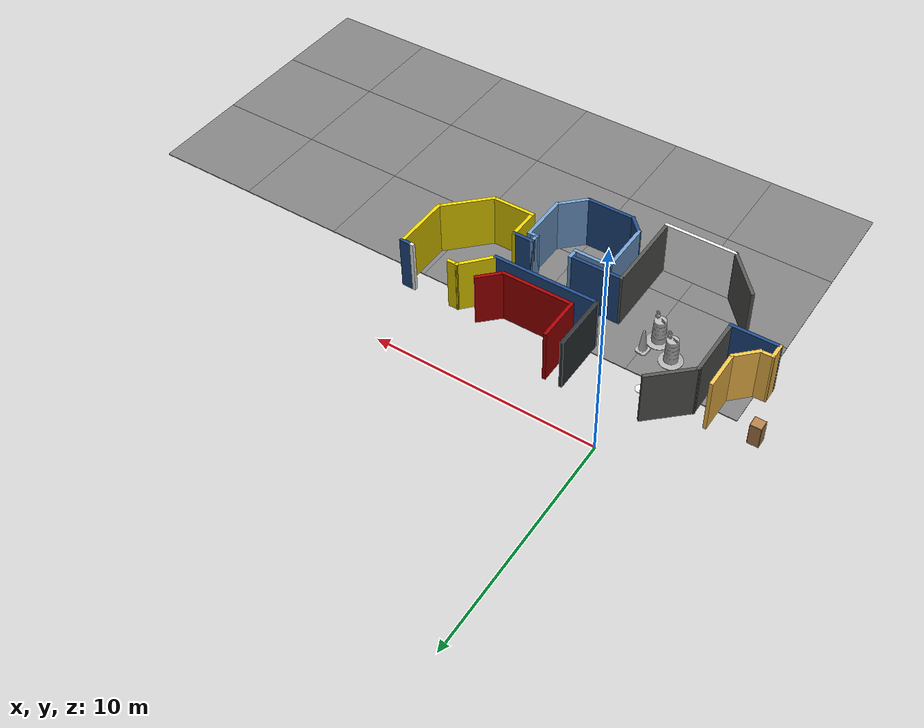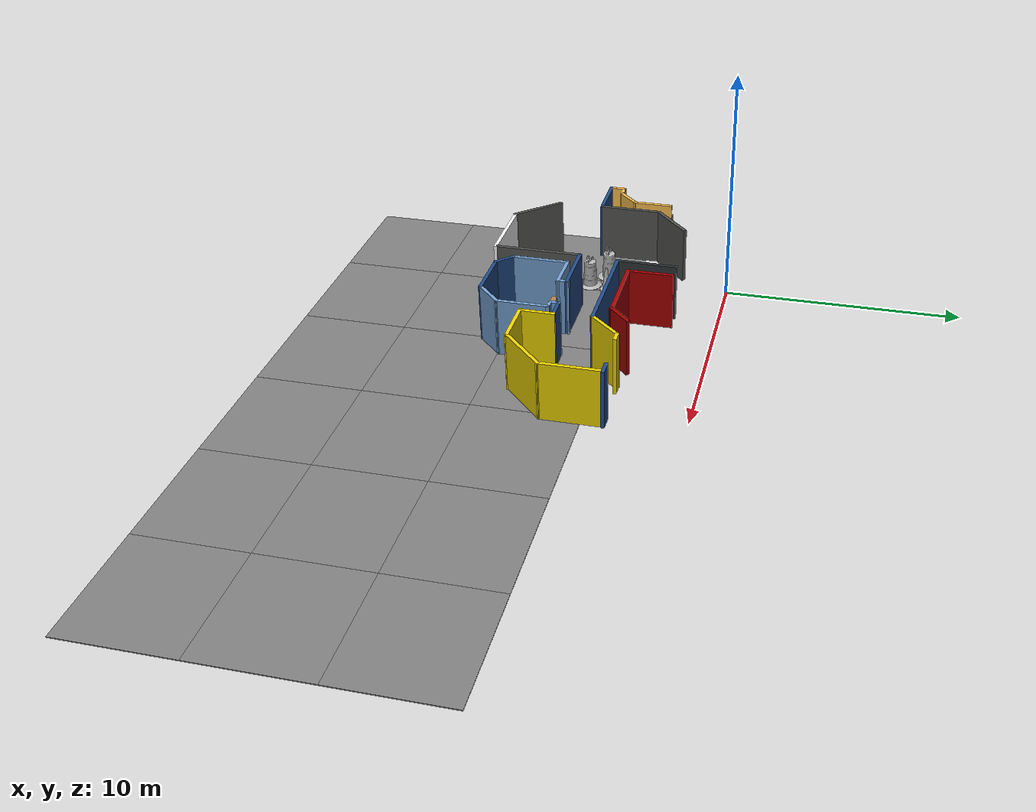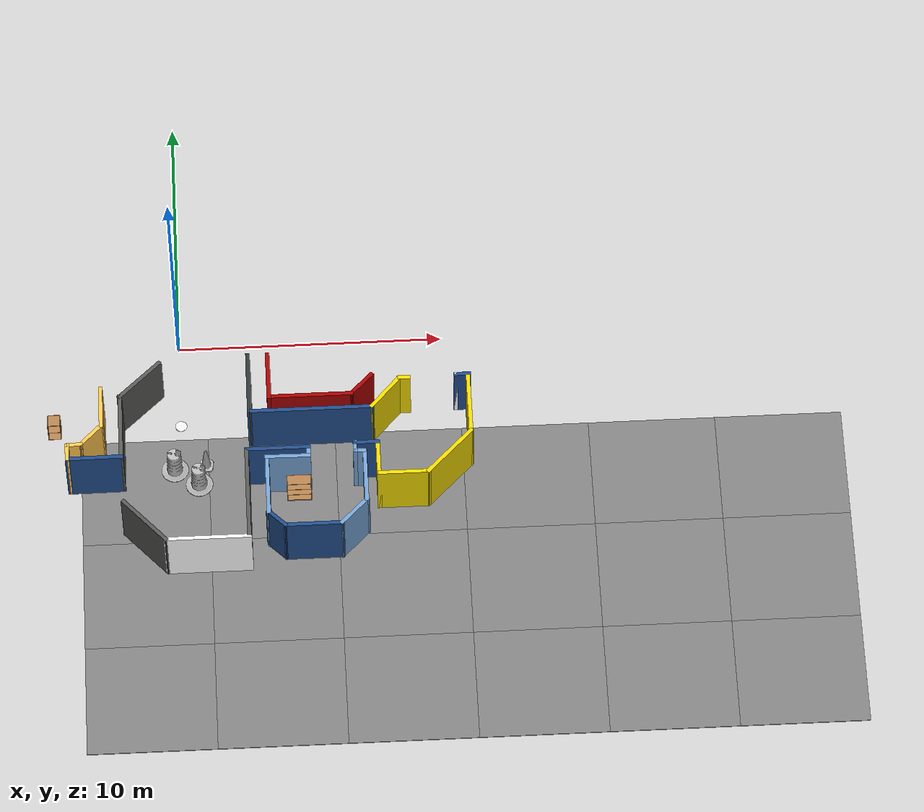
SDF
<sdf version="1.7">
 <world name="default">
  <model name="among_us_world">
   <pose>0.133216 -0.12311 0 0 -0 0</pose>
   <link name="Wall_136">
    <collision name="Wall_136_Collision">
     <geometry><box><size>0.5 0.15 2.5</size></box></geometry>
     <pose>0 0 1.25 0 -0 0</pose>
    </collision>
    <visual name="Wall_136_Visual">
     <pose>0 0 1.25 0 -0 0</pose>
     <geometry><box><size>0.5 0.15 2.5</size></box></geometry>
     <material>
      <ambient>0.929412 0.831373 0 1</ambient>
      <diffuse>0.929412 0.831373 0 1</diffuse>
      <specular>0.08 0.08 0.08 1</specular>
      <emissive>0 0 0 1</emissive>
      <pbr><metal><roughness>0.82</roughness><metalness>0</metalness></metal></pbr>
     </material>
     <meta><layer>0</layer></meta>
    </visual>
    <pose>8.3307 -3.01765 0 0 -0 3.14159</pose>
   </link>
   <link name="Wall_141">
    <collision name="Wall_141_Collision">
     <geometry><box><size>4.75 0.15 2.5</size></box></geometry>
     <pose>0 0 1.25 0 -0 0</pose>
    </collision>
    <visual name="Wall_141_Visual">
     <pose>0 0 1.25 0 -0 0</pose>
     <geometry><box><size>4.75 0.15 2.5</size></box></geometry>
     <material>
      <ambient>0.12549 0.290196 0.529412 1</ambient>
      <diffuse>0.12549 0.290196 0.529412 1</diffuse>
      <specular>0.08 0.08 0.08 1</specular>
      <emissive>0 0 0 1</emissive>
      <pbr><metal><roughness>0.82</roughness><metalness>0</metalness></metal></pbr>
     </material>
     <meta><layer>0</layer></meta>
    </visual>
    <pose>4.78856 -4.21327 0 0 -0 0</pose>
   </link>
   <link name="Wall_143">
    <collision name="Wall_143_Collision">
     <geometry><box><size>1.75259 0.15 2.5</size></box></geometry>
     <pose>0 0 1.25 0 -0 0</pose>
    </collision>
    <visual name="Wall_143_Visual">
     <pose>0 0 1.25 0 -0 0</pose>
     <geometry><box><size>1.75259 0.15 2.5</size></box></geometry>
     <material>
      <ambient>0.929412 0.831373 0 1</ambient>
      <diffuse>0.929412 0.831373 0 1</diffuse>
      <specular>0.08 0.08 0.08 1</specular>
      <emissive>0 0 0 1</emissive>
      <pbr><metal><roughness>0.82</roughness><metalness>0</metalness></metal></pbr>
     </material>
     <meta><layer>0</layer></meta>
    </visual>
    <pose>7.62213 -3.61546 0 0 -0 -2.29947</pose>
   </link>
   <link name="Wall_149">
    <collision name="Wall_149_Collision">
     <geometry><box><size>1.75 0.15 2.5</size></box></geometry>
     <pose>0 0 1.25 0 -0 0</pose>
    </collision>
    <visual name="Wall_149_Visual">
     <pose>0 0 1.25 0 -0 0</pose>
     <geometry><box><size>1.75 0.15 2.5</size></box></geometry>
     <material>
      <ambient>1 0.764706 0.305882 1</ambient>
      <diffuse>1 0.764706 0.305882 1</diffuse>
      <specular>0.08 0.08 0.08 1</specular>
      <emissive>0 0 0 1</emissive>
      <pbr><metal><roughness>0.82</roughness><metalness>0</metalness></metal></pbr>
     </material>
     <meta><layer>0</layer></meta>
    </visual>
    <pose>-3.06777 -3.75928 0 0 -0 -1.5708</pose>
   </link>
   <link name="Wall_150">
    <collision name="Wall_150_Collision">
     <geometry><box><size>1.25 0.15 2.5</size></box></geometry>
     <pose>0 0 1.25 0 -0 0</pose>
    </collision>
    <visual name="Wall_150_Visual">
     <pose>0 0 1.25 0 -0 0</pose>
     <geometry><box><size>1.25 0.15 2.5</size></box></geometry>
     <material>
      <ambient>1 0.764706 0.305882 1</ambient>
      <diffuse>1 0.764706 0.305882 1</diffuse>
      <specular>0.08 0.08 0.08 1</specular>
      <emissive>0 0 0 1</emissive>
      <pbr><metal><roughness>0.82</roughness><metalness>0</metalness></metal></pbr>
     </material>
     <meta><layer>0</layer></meta>
    </visual>
    <pose>-3.45677 -4.94828 0 0 -0 -2.35619</pose>
   </link>
   <link name="Wall_153">
    <collision name="Wall_153_Collision">
     <geometry><box><size>0.660076 0.15 2.5</size></box></geometry>
     <pose>0 0 1.25 0 -0 0</pose>
    </collision>
    <visual name="Wall_153_Visual">
     <pose>0 0 1.25 0 -0 0</pose>
     <geometry><box><size>0.660076 0.15 2.5</size></box></geometry>
     <material>
      <ambient>1 0.764706 0.305882 1</ambient>
      <diffuse>1 0.764706 0.305882 1</diffuse>
      <specular>0.08 0.08 0.08 1</specular>
      <emissive>0 0 0 1</emissive>
      <pbr><metal><roughness>0.82</roughness><metalness>0</metalness></metal></pbr>
     </material>
     <meta><layer>0</layer></meta>
    </visual>
    <pose>-4.10077 -5.34628 0 0 -0 -3.10631</pose>
   </link>
   <link name="Wall_154">
    <collision name="Wall_154_Collision">
     <geometry><box><size>0.75 0.15 2.5</size></box></geometry>
     <pose>0 0 1.25 0 -0 0</pose>
    </collision>
    <visual name="Wall_154_Visual">
     <pose>0 0 1.25 0 -0 0</pose>
     <geometry><box><size>0.75 0.15 2.5</size></box></geometry>
     <material>
      <ambient>1 0.764706 0.305882 1</ambient>
      <diffuse>1 0.764706 0.305882 1</diffuse>
      <specular>0.08 0.08 0.08 1</specular>
      <emissive>0 0 0 1</emissive>
      <pbr><metal><roughness>0.82</roughness><metalness>0</metalness></metal></pbr>
     </material>
     <meta><layer>0</layer></meta>
    </visual>
    <pose>-4.35577 -5.65528 0 0 -0 -1.5708</pose>
   </link>
   <link name="Wall_155">
    <collision name="Wall_155_Collision">
     <geometry><box><size>2.16008 0.15 2.5</size></box></geometry>
     <pose>0 0 1.25 0 -0 0</pose>
    </collision>
    <visual name="Wall_155_Visual">
     <pose>0 0 1.25 0 -0 0</pose>
     <geometry><box><size>2.16008 0.15 2.5</size></box></geometry>
     <material>
      <ambient>0.12549 0.290196 0.529412 1</ambient>
      <diffuse>0.12549 0.290196 0.529412 1</diffuse>
      <specular>0.08 0.08 0.08 1</specular>
      <emissive>0 0 0 1</emissive>
      <pbr><metal><roughness>0.82</roughness><metalness>0</metalness></metal></pbr>
     </material>
     <meta><layer>0</layer></meta>
    </visual>
    <pose>-3.35065 -5.9463 0 0 -0 0.008937</pose>
   </link>
   <link name="Wall_156">
    <collision name="Wall_156_Collision">
     <geometry><box><size>2.75 0.15 2.5</size></box></geometry>
     <pose>0 0 1.25 0 -0 0</pose>
    </collision>
    <visual name="Wall_156_Visual">
     <pose>0 0 1.25 0 -0 0</pose>
     <geometry><box><size>2.75 0.15 2.5</size></box></geometry>
     <material>
      <ambient>0.333333 0.341176 0.32549 1</ambient>
      <diffuse>0.333333 0.341176 0.32549 1</diffuse>
      <specular>0.08 0.08 0.08 1</specular>
      <emissive>0 0 0 1</emissive>
      <pbr><metal><roughness>0.82</roughness><metalness>0</metalness></metal></pbr>
     </material>
     <meta><layer>0</layer></meta>
    </visual>
    <pose>-2.34553 -4.63732 0 0 -0 1.5708</pose>
   </link>
   <link name="Wall_190">
    <collision name="Wall_190_Collision">
     <geometry><box><size>2 0.15 2.5</size></box></geometry>
     <pose>0 0 1.25 0 -0 0</pose>
    </collision>
    <visual name="Wall_190_Visual">
     <pose>0 0 1.25 0 -0 0</pose>
     <geometry><box><size>2 0.15 2.5</size></box></geometry>
     <material>
      <ambient>0.643137 0 0 1</ambient>
      <diffuse>0.643137 0 0 1</diffuse>
      <specular>0.08 0.08 0.08 1</specular>
      <emissive>0 0 0 1</emissive>
      <pbr><metal><roughness>0.82</roughness><metalness>0</metalness></metal></pbr>
     </material>
     <meta><layer>0</layer></meta>
    </visual>
    <pose>3.23856 -2.68827 0 0 -0 -1.5708</pose>
   </link>
   <link name="Wall_191">
    <collision name="Wall_191_Collision">
     <geometry><box><size>3.25 0.15 2.5</size></box></geometry>
     <pose>0 0 1.25 0 -0 0</pose>
    </collision>
    <visual name="Wall_191_Visual">
     <pose>0 0 1.25 0 -0 0</pose>
     <geometry><box><size>3.25 0.15 2.5</size></box></geometry>
     <material>
      <ambient>0.643137 0 0 1</ambient>
      <diffuse>0.643137 0 0 1</diffuse>
      <specular>0.08 0.08 0.08 1</specular>
      <emissive>0 0 0 1</emissive>
      <pbr><metal><roughness>0.82</roughness><metalness>0</metalness></metal></pbr>
     </material>
     <meta><layer>0</layer></meta>
    </visual>
    <pose>4.78856 -3.61327 0 0 -0 0</pose>
   </link>
   <link name="Wall_192">
    <collision name="Wall_192_Collision">
     <geometry><box><size>1.25 0.15 2.5</size></box></geometry>
     <pose>0 0 1.25 0 -0 0</pose>
    </collision>
    <visual name="Wall_192_Visual">
     <pose>0 0 1.25 0 -0 0</pose>
     <geometry><box><size>1.25 0.15 2.5</size></box></geometry>
     <material>
      <ambient>0.643137 0 0 1</ambient>
      <diffuse>0.643137 0 0 1</diffuse>
      <specular>0.08 0.08 0.08 1</specular>
      <emissive>0 0 0 1</emissive>
      <pbr><metal><roughness>0.82</roughness><metalness>0</metalness></metal></pbr>
     </material>
     <meta><layer>0</layer></meta>
    </visual>
    <pose>6.72747 -3.22436 0 0 -0 0.785398</pose>
   </link>
   <link name="Wall_195">
    <collision name="Wall_195_Collision">
     <geometry><box><size>2.43279 0.15 2.5</size></box></geometry>
     <pose>0 0 1.25 0 -0 0</pose>
    </collision>
    <visual name="Wall_195_Visual">
     <pose>0 0 1.25 0 -0 0</pose>
     <geometry><box><size>2.43279 0.15 2.5</size></box></geometry>
     <material>
      <ambient>0.333333 0.341176 0.32549 1</ambient>
      <diffuse>0.333333 0.341176 0.32549 1</diffuse>
      <specular>0.08 0.08 0.08 1</specular>
      <emissive>0 0 0 1</emissive>
      <pbr><metal><roughness>0.82</roughness><metalness>0</metalness></metal></pbr>
     </material>
     <meta><layer>0</layer></meta>
    </visual>
    <pose>-1.52341 -8.72218 0 0 -0 -0.835926</pose>
   </link>
   <link name="Wall_200">
    <collision name="Wall_200_Collision">
     <geometry><box><size>3.75 0.15 2.5</size></box></geometry>
     <pose>0 0 1.25 0 -0 0</pose>
    </collision>
    <visual name="Wall_200_Visual">
     <pose>0 0 1.25 0 -0 0</pose>
     <geometry><box><size>3.75 0.15 2.5</size></box></geometry>
     <material>
      <ambient>0.333333 0.341176 0.32549 1</ambient>
      <diffuse>0.333333 0.341176 0.32549 1</diffuse>
      <specular>0.08 0.08 0.08 1</specular>
      <emissive>0 0 0 1</emissive>
      <pbr><metal><roughness>0.82</roughness><metalness>0</metalness></metal></pbr>
     </material>
     <meta><layer>0</layer></meta>
    </visual>
    <pose>2.32919 -7.66138 0 0 -0 1.5708</pose>
   </link>
   <link name="Wall_202">
    <collision name="Wall_202_Collision">
     <geometry><box><size>3.25 0.15 2.5</size></box></geometry>
     <pose>0 0 1.25 0 -0 0</pose>
    </collision>
    <visual name="Wall_202_Visual">
     <pose>0 0 1.25 0 -0 0</pose>
     <geometry><box><size>3.25 0.15 2.5</size></box></geometry>
     <material>
      <ambient>1 1 1 1</ambient>
      <diffuse>1 1 1 1</diffuse>
      <specular>0.08 0.08 0.08 1</specular>
      <emissive>0 0 0 1</emissive>
      <pbr><metal><roughness>0.82</roughness><metalness>0</metalness></metal></pbr>
     </material>
     <meta><layer>0</layer></meta>
    </visual>
    <pose>0.791885 -9.56227 0 0 -0 0</pose>
   </link>
   <link name="Wall_206">
    <collision name="Wall_206_Collision">
     <geometry><box><size>2.20149 0.15 2.5</size></box></geometry>
     <pose>0 0 1.25 0 -0 0</pose>
    </collision>
    <visual name="Wall_206_Visual">
     <pose>0 0 1.25 0 -0 0</pose>
     <geometry><box><size>2.20149 0.15 2.5</size></box></geometry>
     <material>
      <ambient>0.333333 0.341176 0.32549 1</ambient>
      <diffuse>0.333333 0.341176 0.32549 1</diffuse>
      <specular>0.08 0.08 0.08 1</specular>
      <emissive>0 0 0 1</emissive>
      <pbr><metal><roughness>0.82</roughness><metalness>0</metalness></metal></pbr>
     </material>
     <meta><layer>0</layer></meta>
    </visual>
    <pose>-1.59629 -2.63675 0 0 -0 0.751837</pose>
   </link>
   <link name="Wall_217">
    <collision name="Wall_217_Collision">
     <geometry><box><size>2.60674 0.15 2.5</size></box></geometry>
     <pose>0 0 1.25 0 -0 0</pose>
    </collision>
    <visual name="Wall_217_Visual">
     <pose>0 0 1.25 0 -0 0</pose>
     <geometry><box><size>2.60674 0.15 2.5</size></box></geometry>
     <material>
      <ambient>0.180392 0.203922 0.211765 1</ambient>
      <diffuse>0.180392 0.203922 0.211765 1</diffuse>
      <specular>0.08 0.08 0.08 1</specular>
      <emissive>0 0 0 1</emissive>
      <pbr><metal><roughness>0.82</roughness><metalness>0</metalness></metal></pbr>
     </material>
     <meta><layer>0</layer></meta>
    </visual>
    <pose>2.49237 -2.9849 0 0 -0 -1.5739</pose>
   </link>
   <link name="Wall_66">
    <collision name="Wall_66_Collision">
     <geometry><box><size>2.44341 0.15 2.5</size></box></geometry>
     <pose>0 0 1.25 0 -0 0</pose>
    </collision>
    <visual name="Wall_66_Visual">
     <pose>0 0 1.25 0 -0 0</pose>
     <geometry><box><size>2.44341 0.15 2.5</size></box></geometry>
     <material>
      <ambient>0.12549 0.290196 0.529412 1</ambient>
      <diffuse>0.12549 0.290196 0.529412 1</diffuse>
      <specular>0.08 0.08 0.08 1</specular>
      <emissive>0 0 0 1</emissive>
      <pbr><metal><roughness>0.82</roughness><metalness>0</metalness></metal></pbr>
     </material>
     <meta><layer>0</layer></meta>
    </visual>
    <pose>3.49624 -5.86016 0 0 -0 0.001069</pose>
   </link>
   <link name="Wall_68">
    <collision name="Wall_68_Collision">
     <geometry><box><size>0.526231 0.15 2.5</size></box></geometry>
     <pose>0 0 1.25 0 -0 0</pose>
    </collision>
    <visual name="Wall_68_Visual">
     <pose>0 0 1.25 0 -0 0</pose>
     <geometry><box><size>0.526231 0.15 2.5</size></box></geometry>
     <material>
      <ambient>0.447059 0.623529 0.811765 1</ambient>
      <diffuse>0.447059 0.623529 0.811765 1</diffuse>
      <specular>0.08 0.08 0.08 1</specular>
      <emissive>0 0 0 1</emissive>
      <pbr><metal><roughness>0.82</roughness><metalness>0</metalness></metal></pbr>
     </material>
     <meta><layer>0</layer></meta>
    </visual>
    <pose>4.64294 -6.02916 0 0 -0 -1.5708</pose>
   </link>
   <link name="Wall_69">
    <collision name="Wall_69_Collision">
     <geometry><box><size>1.71385 0.15 2.5</size></box></geometry>
     <pose>0 0 1.25 0 -0 0</pose>
    </collision>
    <visual name="Wall_69_Visual">
     <pose>0 0 1.25 0 -0 0</pose>
     <geometry><box><size>1.71385 0.15 2.5</size></box></geometry>
     <material>
      <ambient>0.447059 0.623529 0.811765 1</ambient>
      <diffuse>0.447059 0.623529 0.811765 1</diffuse>
      <specular>0.08 0.08 0.08 1</specular>
      <emissive>0 0 0 1</emissive>
      <pbr><metal><roughness>0.82</roughness><metalness>0</metalness></metal></pbr>
     </material>
     <meta><layer>0</layer></meta>
    </visual>
    <pose>3.86107 -6.22622 0 0 -0 3.13015</pose>
   </link>
   <link name="Wall_70">
    <collision name="Wall_70_Collision">
     <geometry><box><size>2.5 0.15 2.5</size></box></geometry>
     <pose>0 0 1.25 0 -0 0</pose>
    </collision>
    <visual name="Wall_70_Visual">
     <pose>0 0 1.25 0 -0 0</pose>
     <geometry><box><size>2.5 0.15 2.5</size></box></geometry>
     <material>
      <ambient>0.447059 0.623529 0.811765 1</ambient>
      <diffuse>0.447059 0.623529 0.811765 1</diffuse>
      <specular>0.08 0.08 0.08 1</specular>
      <emissive>0 0 0 1</emissive>
      <pbr><metal><roughness>0.82</roughness><metalness>0</metalness></metal></pbr>
     </material>
     <meta><layer>0</layer></meta>
    </visual>
    <pose>3.07919 -7.39227 0 0 -0 -1.5708</pose>
   </link>
   <link name="Wall_71">
    <collision name="Wall_71_Collision">
     <geometry><box><size>1 0.15 2.5</size></box></geometry>
     <pose>0 0 1.25 0 -0 0</pose>
    </collision>
    <visual name="Wall_71_Visual">
     <pose>0 0 1.25 0 -0 0</pose>
     <geometry><box><size>1 0.15 2.5</size></box></geometry>
     <material>
      <ambient>0.12549 0.290196 0.529412 1</ambient>
      <diffuse>0.12549 0.290196 0.529412 1</diffuse>
      <specular>0.08 0.08 0.08 1</specular>
      <emissive>0 0 0 1</emissive>
      <pbr><metal><roughness>0.82</roughness><metalness>0</metalness></metal></pbr>
     </material>
     <meta><layer>0</layer></meta>
    </visual>
    <pose>3.37971 -8.86779 0 0 -0 -0.785398</pose>
   </link>
   <link name="Wall_72">
    <collision name="Wall_72_Collision">
     <geometry><box><size>2.25 0.15 2.5</size></box></geometry>
     <pose>0 0 1.25 0 -0 0</pose>
    </collision>
    <visual name="Wall_72_Visual">
     <pose>0 0 1.25 0 -0 0</pose>
     <geometry><box><size>2.25 0.15 2.5</size></box></geometry>
     <material>
      <ambient>0.12549 0.290196 0.529412 1</ambient>
      <diffuse>0.12549 0.290196 0.529412 1</diffuse>
      <specular>0.08 0.08 0.08 1</specular>
      <emissive>0 0 0 1</emissive>
      <pbr><metal><roughness>0.82</roughness><metalness>0</metalness></metal></pbr>
     </material>
     <meta><layer>0</layer></meta>
    </visual>
    <pose>4.73024 -9.16831 0 0 -0 0</pose>
   </link>
   <link name="Wall_73">
    <collision name="Wall_73_Collision">
     <geometry><box><size>1.5 0.15 2.5</size></box></geometry>
     <pose>0 0 1.25 0 -0 0</pose>
    </collision>
    <visual name="Wall_73_Visual">
     <pose>0 0 1.25 0 -0 0</pose>
     <geometry><box><size>1.5 0.15 2.5</size></box></geometry>
     <material>
      <ambient>0.447059 0.623529 0.811765 1</ambient>
      <diffuse>0.447059 0.623529 0.811765 1</diffuse>
      <specular>0.08 0.08 0.08 1</specular>
      <emissive>0 0 0 1</emissive>
      <pbr><metal><roughness>0.82</roughness><metalness>0</metalness></metal></pbr>
     </material>
     <meta><layer>0</layer></meta>
    </visual>
    <pose>6.25753 -8.69102 0 0 -0 0.785398</pose>
   </link>
   <link name="Wall_76">
    <collision name="Wall_76_Collision">
     <geometry><box><size>2.25 0.15 2.5</size></box></geometry>
     <pose>0 0 1.25 0 -0 0</pose>
    </collision>
    <visual name="Wall_76_Visual">
     <pose>0 0 1.25 0 -0 0</pose>
     <geometry><box><size>2.25 0.15 2.5</size></box></geometry>
     <material>
      <ambient>0.447059 0.623529 0.811765 1</ambient>
      <diffuse>0.447059 0.623529 0.811765 1</diffuse>
      <specular>0.08 0.08 0.08 1</specular>
      <emissive>0 0 0 1</emissive>
      <pbr><metal><roughness>0.82</roughness><metalness>0</metalness></metal></pbr>
     </material>
     <meta><layer>0</layer></meta>
    </visual>
    <pose>6.73483 -7.16372 0 0 -0 1.5708</pose>
   </link>
   <link name="Wall_77">
    <collision name="Wall_77_Collision">
     <geometry><box><size>0.5 0.15 2.5</size></box></geometry>
     <pose>0 0 1.25 0 -0 0</pose>
    </collision>
    <visual name="Wall_77_Visual">
     <pose>0 0 1.25 0 -0 0</pose>
     <geometry><box><size>0.5 0.15 2.5</size></box></geometry>
     <material>
      <ambient>0.447059 0.623529 0.811765 1</ambient>
      <diffuse>0.447059 0.623529 0.811765 1</diffuse>
      <specular>0.08 0.08 0.08 1</specular>
      <emissive>0 0 0 1</emissive>
      <pbr><metal><roughness>0.82</roughness><metalness>0</metalness></metal></pbr>
     </material>
     <meta><layer>0</layer></meta>
    </visual>
    <pose>6.55983 -6.11372 0 0 -0 3.14159</pose>
   </link>
   <link name="Wall_78">
    <collision name="Wall_78_Collision">
     <geometry><box><size>0.5 0.15 2.5</size></box></geometry>
     <pose>0 0 1.25 0 -0 0</pose>
    </collision>
    <visual name="Wall_78_Visual">
     <pose>0 0 1.25 0 -0 0</pose>
     <geometry><box><size>0.5 0.15 2.5</size></box></geometry>
     <material>
      <ambient>0.447059 0.623529 0.811765 1</ambient>
      <diffuse>0.447059 0.623529 0.811765 1</diffuse>
      <specular>0.08 0.08 0.08 1</specular>
      <emissive>0 0 0 1</emissive>
      <pbr><metal><roughness>0.82</roughness><metalness>0</metalness></metal></pbr>
     </material>
     <meta><layer>0</layer></meta>
    </visual>
    <pose>6.38483 -5.93872 0 0 -0 1.5708</pose>
   </link>
   <link name="Wall_79">
    <collision name="Wall_79_Collision">
     <geometry><box><size>1 0.15 2.5</size></box></geometry>
     <pose>0 0 1.25 0 -0 0</pose>
    </collision>
    <visual name="Wall_79_Visual">
     <pose>0 0 1.25 0 -0 0</pose>
     <geometry><box><size>1 0.15 2.5</size></box></geometry>
     <material>
      <ambient>0.12549 0.290196 0.529412 1</ambient>
      <diffuse>0.12549 0.290196 0.529412 1</diffuse>
      <specular>0.08 0.08 0.08 1</specular>
      <emissive>0 0 0 1</emissive>
      <pbr><metal><roughness>0.82</roughness><metalness>0</metalness></metal></pbr>
     </material>
     <meta><layer>0</layer></meta>
    </visual>
    <pose>6.80983 -5.76372 0 0 -0 0</pose>
   </link>
   <link name="Wall_80">
    <collision name="Wall_80_Collision">
     <geometry><box><size>1.5 0.15 2.5</size></box></geometry>
     <pose>0 0 1.25 0 -0 0</pose>
    </collision>
    <visual name="Wall_80_Visual">
     <pose>0 0 1.25 0 -0 0</pose>
     <geometry><box><size>1.5 0.15 2.5</size></box></geometry>
     <material>
      <ambient>0.929412 0.831373 0 1</ambient>
      <diffuse>0.929412 0.831373 0 1</diffuse>
      <specular>0.08 0.08 0.08 1</specular>
      <emissive>0 0 0 1</emissive>
      <pbr><metal><roughness>0.82</roughness><metalness>0</metalness></metal></pbr>
     </material>
     <meta><layer>0</layer></meta>
    </visual>
    <pose>7.23483 -6.43872 0 0 -0 -1.5708</pose>
   </link>
   <link name="Wall_82">
    <collision name="Wall_82_Collision">
     <geometry><box><size>2 0.15 2.5</size></box></geometry>
     <pose>0 0 1.25 0 -0 0</pose>
    </collision>
    <visual name="Wall_82_Visual">
     <pose>0 0 1.25 0 -0 0</pose>
     <geometry><box><size>2 0.15 2.5</size></box></geometry>
     <material>
      <ambient>0.929412 0.831373 0 1</ambient>
      <diffuse>0.929412 0.831373 0 1</diffuse>
      <specular>0.08 0.08 0.08 1</specular>
      <emissive>0 0 0 1</emissive>
      <pbr><metal><roughness>0.82</roughness><metalness>0</metalness></metal></pbr>
     </material>
     <meta><layer>0</layer></meta>
    </visual>
    <pose>8.15983 -7.11372 0 0 -0 0</pose>
   </link>
   <link name="Wall_83">
    <collision name="Wall_83_Collision">
     <geometry><box><size>2.5 0.15 2.5</size></box></geometry>
     <pose>0 0 1.25 0 -0 0</pose>
    </collision>
    <visual name="Wall_83_Visual">
     <pose>0 0 1.25 0 -0 0</pose>
     <geometry><box><size>2.5 0.15 2.5</size></box></geometry>
     <material>
      <ambient>0.929412 0.831373 0 1</ambient>
      <diffuse>0.929412 0.831373 0 1</diffuse>
      <specular>0.08 0.08 0.08 1</specular>
      <emissive>0 0 0 1</emissive>
      <pbr><metal><roughness>0.82</roughness><metalness>0</metalness></metal></pbr>
     </material>
     <meta><layer>0</layer></meta>
    </visual>
    <pose>9.91568 -6.28287 0 0 -0 0.785398</pose>
   </link>
   <link name="Wall_85">
    <collision name="Wall_85_Collision">
     <geometry><box><size>2.5 0.15 2.5</size></box></geometry>
     <pose>0 0 1.25 0 -0 0</pose>
    </collision>
    <visual name="Wall_85_Visual">
     <pose>0 0 1.25 0 -0 0</pose>
     <geometry><box><size>2.5 0.15 2.5</size></box></geometry>
     <material>
      <ambient>0.929412 0.831373 0 1</ambient>
      <diffuse>0.929412 0.831373 0 1</diffuse>
      <specular>0.08 0.08 0.08 1</specular>
      <emissive>0 0 0 1</emissive>
      <pbr><metal><roughness>0.82</roughness><metalness>0</metalness></metal></pbr>
     </material>
     <meta><layer>0</layer></meta>
    </visual>
    <pose>10.7465 -4.27702 0 0 -0 1.5708</pose>
   </link>
   <link name="Wall_90">
    <collision name="Wall_90_Collision">
     <geometry><box><size>0.15 0.15 2.5</size></box></geometry>
     <pose>0 0 1.25 0 -0 0</pose>
    </collision>
    <visual name="Wall_90_Visual">
     <pose>0 0 1.25 0 -0 0</pose>
     <geometry><box><size>0.15 0.15 2.5</size></box></geometry>
     <material>
      <ambient>1 1 1 1</ambient>
      <diffuse>1 1 1 1</diffuse>
      <specular>0.08 0.08 0.08 1</specular>
      <emissive>0 0 0 1</emissive>
      <pbr><metal><roughness>0.82</roughness><metalness>0</metalness></metal></pbr>
     </material>
     <meta><layer>0</layer></meta>
    </visual>
    <pose>10.2844 -2.97735 0 0 -0 0</pose>
   </link>
   <link name="Wall_93">
    <collision name="Wall_93_Collision">
     <geometry><box><size>0.654769 0.15 2.5</size></box></geometry>
     <pose>0 0 1.25 0 -0 0</pose>
    </collision>
    <visual name="Wall_93_Visual">
     <pose>0 0 1.25 0 -0 0</pose>
     <geometry><box><size>0.654769 0.15 2.5</size></box></geometry>
     <material>
      <ambient>0.12549 0.290196 0.529412 1</ambient>
      <diffuse>0.12549 0.290196 0.529412 1</diffuse>
      <specular>0.08 0.08 0.08 1</specular>
      <emissive>0 0 0 1</emissive>
      <pbr><metal><roughness>0.82</roughness><metalness>0</metalness></metal></pbr>
     </material>
     <meta><layer>0</layer></meta>
    </visual>
    <pose>10.5368 -2.97735 0 0 -0 0</pose>
   </link>
   <static>1</static>
  </model>
  <model name="cabinet_clone_0">
   <static>1</static>
   <link name="cabinet_bottom_plate">
    <inertial>
     <pose>0 0 -1 0 -0 0</pose>
     <inertia><ixx>2.05</ixx><ixy>0</ixy><ixz>0</ixz><iyy>2.05</iyy><iyz>0</iyz><izz>2.05</izz></inertia>
     <mass>25</mass>
    </inertial>
    <collision name="cabinet_bottom_plate_geom">
     <pose>0 0 0.01 0 -0 0</pose>
     <geometry><box><size>0.45 0.45 0.02</size></box></geometry>
    </collision>
    <visual name="cabinet_bottom_plate_geom_visual">
     <pose>0 0 0.01 0 -0 0</pose>
     <geometry><box><size>0.45 0.45 0.02</size></box></geometry>
     <material>
      <script><uri>file://media/materials/scripts/gazebo.material</uri><name>Gazebo/Wood</name></script>
      <ambient>0.55 0.34 0.16 1</ambient>
      <diffuse>0.55 0.34 0.16 1</diffuse>
      <specular>0.08 0.08 0.08 1</specular>
      <emissive>0 0 0 1</emissive>
     </material>
    </visual>
    <collision name="cabinet_bottom_plate_geom_cabinet_back_plate">
     <pose>0.235 0 0.51 0 -0 0</pose>
     <geometry><box><size>0.02 0.45 1.02</size></box></geometry>
    </collision>
    <visual name="cabinet_bottom_plate_geom_cabinet_back_plate_visual">
     <pose>0.235 0 0.51 0 -0 0</pose>
     <geometry><box><size>0.02 0.45 1.02</size></box></geometry>
     <material>
      <script><uri>file://media/materials/scripts/gazebo.material</uri><name>Gazebo/Wood</name></script>
      <ambient>0.55 0.34 0.16 1</ambient>
      <diffuse>0.55 0.34 0.16 1</diffuse>
      <specular>0.08 0.08 0.08 1</specular>
      <emissive>0 0 0 1</emissive>
     </material>
    </visual>
    <collision name="cabinet_bottom_plate_geom_cabinet_left_plate">
     <pose>0 0.235 0.51 0 -0 0</pose>
     <geometry><box><size>0.45 0.02 1.02</size></box></geometry>
    </collision>
    <visual name="cabinet_bottom_plate_geom_cabinet_left_plate_visual">
     <pose>0 0.235 0.51 0 -0 0</pose>
     <geometry><box><size>0.45 0.02 1.02</size></box></geometry>
     <material>
      <script><uri>file://media/materials/scripts/gazebo.material</uri><name>Gazebo/Wood</name></script>
      <ambient>0.55 0.34 0.16 1</ambient>
      <diffuse>0.55 0.34 0.16 1</diffuse>
      <specular>0.08 0.08 0.08 1</specular>
      <emissive>0 0 0 1</emissive>
     </material>
    </visual>
    <collision name="cabinet_bottom_plate_geom_cabinet_middle_plate">
     <pose>0 0 0.51 0 -0 0</pose>
     <geometry><box><size>0.45 0.45 0.02</size></box></geometry>
    </collision>
    <visual name="cabinet_bottom_plate_geom_cabinet_middle_plate_visual">
     <pose>0 0 0.51 0 -0 0</pose>
     <geometry><box><size>0.45 0.45 0.02</size></box></geometry>
     <material>
      <script><uri>file://media/materials/scripts/gazebo.material</uri><name>Gazebo/Wood</name></script>
      <ambient>0.55 0.34 0.16 1</ambient>
      <diffuse>0.55 0.34 0.16 1</diffuse>
      <specular>0.08 0.08 0.08 1</specular>
      <emissive>0 0 0 1</emissive>
     </material>
    </visual>
    <collision name="cabinet_bottom_plate_geom_cabinet_right_plate">
     <pose>0 -0.235 0.51 0 -0 0</pose>
     <geometry><box><size>0.45 0.02 1.02</size></box></geometry>
    </collision>
    <visual name="cabinet_bottom_plate_geom_cabinet_right_plate_visual">
     <pose>0 -0.235 0.51 0 -0 0</pose>
     <geometry><box><size>0.45 0.02 1.02</size></box></geometry>
     <material>
      <script><uri>file://media/materials/scripts/gazebo.material</uri><name>Gazebo/Wood</name></script>
      <ambient>0.55 0.34 0.16 1</ambient>
      <diffuse>0.55 0.34 0.16 1</diffuse>
      <specular>0.08 0.08 0.08 1</specular>
      <emissive>0 0 0 1</emissive>
     </material>
    </visual>
    <collision name="cabinet_bottom_plate_geom_cabinet_top_plate">
     <pose>0 0 1.01 0 -0 0</pose>
     <geometry><box><size>0.45 0.45 0.02</size></box></geometry>
    </collision>
    <visual name="cabinet_bottom_plate_geom_cabinet_top_plate_visual">
     <pose>0 0 1.01 0 -0 0</pose>
     <geometry><box><size>0.45 0.45 0.02</size></box></geometry>
     <material>
      <script><uri>file://media/materials/scripts/gazebo.material</uri><name>Gazebo/Wood</name></script>
      <ambient>0.55 0.34 0.16 1</ambient>
      <diffuse>0.55 0.34 0.16 1</diffuse>
      <specular>0.08 0.08 0.08 1</specular>
      <emissive>0 0 0 1</emissive>
     </material>
    </visual>
   </link>
   <pose>-4.77375 -3.5118 0 0 -0 1.57</pose>
  </model>
  <model name="Construction Barrel">
   <link name="link">
    <inertial>
     <pose>0 0 0.4 0 -0 0</pose>
     <mass>500</mass>
     <inertia><ixx>51.2096</ixx><iyy>51.2096</iyy><izz>25</izz><ixy>0</ixy><ixz>0</ixz><iyz>0</iyz></inertia>
    </inertial>
    <collision name="collision">
     <pose>0 0 0.32 0 0 0</pose>
     <geometry><cylinder><radius>0.16</radius><length>0.64</length></cylinder></geometry>
    </collision>
    <visual name="visual">
     <geometry><mesh><uri>model://construction_barrel/meshes/construction_barrel.dae</uri></mesh></geometry>
    </visual>
   </link>
   <pose>-0.274787 -5.3139 0.00999 1e-06 -0 -0.237848</pose>
  </model>
  <model name="Construction Barrel_clone">
   <link name="link">
    <inertial>
     <pose>0 0 0.4 0 -0 0</pose>
     <mass>500</mass>
     <inertia><ixx>51.2096</ixx><iyy>51.2096</iyy><izz>25</izz><ixy>0</ixy><ixz>0</ixz><iyz>0</iyz></inertia>
    </inertial>
    <collision name="collision">
     <pose>0 0 0.32 0 0 0</pose>
     <geometry><cylinder><radius>0.16</radius><length>0.64</length></cylinder></geometry>
    </collision>
    <visual name="visual">
     <geometry><mesh><uri>model://construction_barrel/meshes/construction_barrel.dae</uri></mesh></geometry>
    </visual>
   </link>
   <pose>0.623823 -5.9827 0.009999 3e-06 -8e-06 -0.35048</pose>
  </model>
  <model name="bookshelf">
   <static>1</static>
   <link name="link">
    <inertial><mass>1</mass></inertial>
    <collision name="back">
     <pose>0 0.005 0.6 0 -0 0</pose>
     <geometry><box><size>0.9 0.01 1.2</size></box></geometry>
    </collision>
    <visual name="visual1">
     <pose>0 0.005 0.6 0 -0 0</pose>
     <geometry><box><size>0.9 0.01 1.2</size></box></geometry>
     <material>
      <script><uri>file://media/materials/scripts/gazebo.material</uri><name>Gazebo/Wood</name></script>
      <ambient>0.55 0.34 0.16 1</ambient>
      <diffuse>0.55 0.34 0.16 1</diffuse>
      <specular>0.08 0.08 0.08 1</specular>
      <emissive>0 0 0 1</emissive>
     </material>
    </visual>
    <collision name="left_side">
     <pose>0.45 -0.195 0.6 0 -0 0</pose>
     <geometry><box><size>0.02 0.4 1.2</size></box></geometry>
    </collision>
    <visual name="visual2">
     <pose>0.45 -0.195 0.6 0 -0 0</pose>
     <geometry><box><size>0.02 0.4 1.2</size></box></geometry>
     <material>
      <script><uri>file://media/materials/scripts/gazebo.material</uri><name>Gazebo/Wood</name></script>
      <ambient>0.55 0.34 0.16 1</ambient>
      <diffuse>0.55 0.34 0.16 1</diffuse>
      <specular>0.08 0.08 0.08 1</specular>
      <emissive>0 0 0 1</emissive>
     </material>
    </visual>
    <collision name="right_side">
     <pose>-0.45 -0.195 0.6 0 -0 0</pose>
     <geometry><box><size>0.02 0.4 1.2</size></box></geometry>
    </collision>
    <visual name="visual3">
     <pose>-0.45 -0.195 0.6 0 -0 0</pose>
     <geometry><box><size>0.02 0.4 1.2</size></box></geometry>
     <material>
      <script><uri>file://media/materials/scripts/gazebo.material</uri><name>Gazebo/Wood</name></script>
      <ambient>0.55 0.34 0.16 1</ambient>
      <diffuse>0.55 0.34 0.16 1</diffuse>
      <specular>0.08 0.08 0.08 1</specular>
      <emissive>0 0 0 1</emissive>
     </material>
    </visual>
    <collision name="bottom">
     <pose>0 -0.195 0.03 0 -0 0</pose>
     <geometry><box><size>0.88 0.4 0.06</size></box></geometry>
    </collision>
    <visual name="visual4">
     <pose>0 -0.195 0.03 0 -0 0</pose>
     <geometry><box><size>0.88 0.4 0.06</size></box></geometry>
     <material>
      <script><uri>file://media/materials/scripts/gazebo.material</uri><name>Gazebo/Wood</name></script>
      <ambient>0.55 0.34 0.16 1</ambient>
      <diffuse>0.55 0.34 0.16 1</diffuse>
      <specular>0.08 0.08 0.08 1</specular>
      <emissive>0 0 0 1</emissive>
     </material>
    </visual>
    <collision name="top">
     <pose>0 -0.195 1.19 0 -0 0</pose>
     <geometry><box><size>0.88 0.4 0.02</size></box></geometry>
    </collision>
    <visual name="visual5">
     <pose>0 -0.195 1.19 0 -0 0</pose>
     <geometry><box><size>0.88 0.4 0.02</size></box></geometry>
     <material>
      <script><uri>file://media/materials/scripts/gazebo.material</uri><name>Gazebo/Wood</name></script>
      <ambient>0.55 0.34 0.16 1</ambient>
      <diffuse>0.55 0.34 0.16 1</diffuse>
      <specular>0.08 0.08 0.08 1</specular>
      <emissive>0 0 0 1</emissive>
     </material>
    </visual>
    <collision name="low_shelf">
     <pose>0 -0.195 0.43 0 -0 0</pose>
     <geometry><box><size>0.88 0.4 0.02</size></box></geometry>
    </collision>
    <visual name="visual6">
     <pose>0 -0.195 0.43 0 -0 0</pose>
     <geometry><box><size>0.88 0.4 0.02</size></box></geometry>
     <material>
      <script><uri>file://media/materials/scripts/gazebo.material</uri><name>Gazebo/Wood</name></script>
      <ambient>0.55 0.34 0.16 1</ambient>
      <diffuse>0.55 0.34 0.16 1</diffuse>
      <specular>0.08 0.08 0.08 1</specular>
      <emissive>0 0 0 1</emissive>
     </material>
    </visual>
    <collision name="high_shelf">
     <pose>0 -0.195 0.8 0 -0 0</pose>
     <geometry><box><size>0.88 0.4 0.02</size></box></geometry>
    </collision>
    <visual name="visual7">
     <pose>0 -0.195 0.8 0 -0 0</pose>
     <geometry><box><size>0.88 0.4 0.02</size></box></geometry>
     <material>
      <script><uri>file://media/materials/scripts/gazebo.material</uri><name>Gazebo/Wood</name></script>
      <ambient>0.55 0.34 0.16 1</ambient>
      <diffuse>0.55 0.34 0.16 1</diffuse>
      <specular>0.08 0.08 0.08 1</specular>
      <emissive>0 0 0 1</emissive>
     </material>
    </visual>
   </link>
   <pose>4.37057 -6.44632 0 0 -0 0</pose>
  </model>
  <model name="asphalt_tile_00_04">
   <static>1</static>
   <pose>-1.400 -15.000 -0.020 0 -0 0</pose>
   <link name="link">
    <collision name="collision"><geometry><box><size>4.800 4.400 0.040</size></box></geometry></collision>
    <visual name="visual">
     <cast_shadows>0</cast_shadows>
     <geometry><box><size>4.800 4.400 0.040</size></box></geometry>
     <material>
      <ambient>0.5 0.5 0.5 1</ambient>
      <diffuse>0.5 0.5 0.5 1</diffuse>
      <specular>0.2 0.2 0.2 1</specular>
      <emissive>0 0 0 1</emissive>
      <pbr>
       <metal>
        <albedo_map>model://asphalt_plane/materials/textures/tarmac.png</albedo_map>
        <roughness>0.85</roughness>
        <metalness>0</metalness>
       </metal>
      </pbr>
     </material>
    </visual>
   </link>
  </model>
  <model name="asphalt_tile_00_05">
   <static>1</static>
   <pose>3.400 -15.000 -0.020 0 -0 0</pose>
   <link name="link">
    <collision name="collision"><geometry><box><size>4.800 4.400 0.040</size></box></geometry></collision>
    <visual name="visual">
     <cast_shadows>0</cast_shadows>
     <geometry><box><size>4.800 4.400 0.040</size></box></geometry>
     <material>
      <ambient>0.5 0.5 0.5 1</ambient>
      <diffuse>0.5 0.5 0.5 1</diffuse>
      <specular>0.2 0.2 0.2 1</specular>
      <emissive>0 0 0 1</emissive>
      <pbr>
       <metal>
        <albedo_map>model://asphalt_plane/materials/textures/tarmac.png</albedo_map>
        <roughness>0.85</roughness>
        <metalness>0</metalness>
       </metal>
      </pbr>
     </material>
    </visual>
   </link>
  </model>
  <model name="asphalt_tile_00_06">
   <static>1</static>
   <pose>8.200 -15.000 -0.020 0 -0 0</pose>
   <link name="link">
    <collision name="collision"><geometry><box><size>4.800 4.400 0.040</size></box></geometry></collision>
    <visual name="visual">
     <cast_shadows>0</cast_shadows>
     <geometry><box><size>4.800 4.400 0.040</size></box></geometry>
     <material>
      <ambient>0.5 0.5 0.5 1</ambient>
      <diffuse>0.5 0.5 0.5 1</diffuse>
      <specular>0.2 0.2 0.2 1</specular>
      <emissive>0 0 0 1</emissive>
      <pbr>
       <metal>
        <albedo_map>model://asphalt_plane/materials/textures/tarmac.png</albedo_map>
        <roughness>0.85</roughness>
        <metalness>0</metalness>
       </metal>
      </pbr>
     </material>
    </visual>
   </link>
  </model>
  <model name="asphalt_tile_00_07">
   <static>1</static>
   <pose>13.000 -15.000 -0.020 0 -0 0</pose>
   <link name="link">
    <collision name="collision"><geometry><box><size>4.800 4.400 0.040</size></box></geometry></collision>
    <visual name="visual">
     <cast_shadows>0</cast_shadows>
     <geometry><box><size>4.800 4.400 0.040</size></box></geometry>
     <material>
      <ambient>0.5 0.5 0.5 1</ambient>
      <diffuse>0.5 0.5 0.5 1</diffuse>
      <specular>0.2 0.2 0.2 1</specular>
      <emissive>0 0 0 1</emissive>
      <pbr>
       <metal>
        <albedo_map>model://asphalt_plane/materials/textures/tarmac.png</albedo_map>
        <roughness>0.85</roughness>
        <metalness>0</metalness>
       </metal>
      </pbr>
     </material>
    </visual>
   </link>
  </model>
  <model name="asphalt_tile_00_08">
   <static>1</static>
   <pose>17.800 -15.000 -0.020 0 -0 0</pose>
   <link name="link">
    <collision name="collision"><geometry><box><size>4.800 4.400 0.040</size></box></geometry></collision>
    <visual name="visual">
     <cast_shadows>0</cast_shadows>
     <geometry><box><size>4.800 4.400 0.040</size></box></geometry>
     <material>
      <ambient>0.5 0.5 0.5 1</ambient>
      <diffuse>0.5 0.5 0.5 1</diffuse>
      <specular>0.2 0.2 0.2 1</specular>
      <emissive>0 0 0 1</emissive>
      <pbr>
       <metal>
        <albedo_map>model://asphalt_plane/materials/textures/tarmac.png</albedo_map>
        <roughness>0.85</roughness>
        <metalness>0</metalness>
       </metal>
      </pbr>
     </material>
    </visual>
   </link>
  </model>
  <model name="asphalt_tile_00_09">
   <static>1</static>
   <pose>22.600 -15.000 -0.020 0 -0 0</pose>
   <link name="link">
    <collision name="collision"><geometry><box><size>4.800 4.400 0.040</size></box></geometry></collision>
    <visual name="visual">
     <cast_shadows>0</cast_shadows>
     <geometry><box><size>4.800 4.400 0.040</size></box></geometry>
     <material>
      <ambient>0.5 0.5 0.5 1</ambient>
      <diffuse>0.5 0.5 0.5 1</diffuse>
      <specular>0.2 0.2 0.2 1</specular>
      <emissive>0 0 0 1</emissive>
      <pbr>
       <metal>
        <albedo_map>model://asphalt_plane/materials/textures/tarmac.png</albedo_map>
        <roughness>0.85</roughness>
        <metalness>0</metalness>
       </metal>
      </pbr>
     </material>
    </visual>
   </link>
  </model>
  <model name="asphalt_tile_01_04">
   <static>1</static>
   <pose>-1.400 -10.600 -0.020 0 -0 0</pose>
   <link name="link">
    <collision name="collision"><geometry><box><size>4.800 4.400 0.040</size></box></geometry></collision>
    <visual name="visual">
     <cast_shadows>0</cast_shadows>
     <geometry><box><size>4.800 4.400 0.040</size></box></geometry>
     <material>
      <ambient>0.5 0.5 0.5 1</ambient>
      <diffuse>0.5 0.5 0.5 1</diffuse>
      <specular>0.2 0.2 0.2 1</specular>
      <emissive>0 0 0 1</emissive>
      <pbr>
       <metal>
        <albedo_map>model://asphalt_plane/materials/textures/tarmac.png</albedo_map>
        <roughness>0.85</roughness>
        <metalness>0</metalness>
       </metal>
      </pbr>
     </material>
    </visual>
   </link>
  </model>
  <model name="asphalt_tile_01_05">
   <static>1</static>
   <pose>3.400 -10.600 -0.020 0 -0 0</pose>
   <link name="link">
    <collision name="collision"><geometry><box><size>4.800 4.400 0.040</size></box></geometry></collision>
    <visual name="visual">
     <cast_shadows>0</cast_shadows>
     <geometry><box><size>4.800 4.400 0.040</size></box></geometry>
     <material>
      <ambient>0.5 0.5 0.5 1</ambient>
      <diffuse>0.5 0.5 0.5 1</diffuse>
      <specular>0.2 0.2 0.2 1</specular>
      <emissive>0 0 0 1</emissive>
      <pbr>
       <metal>
        <albedo_map>model://asphalt_plane/materials/textures/tarmac.png</albedo_map>
        <roughness>0.85</roughness>
        <metalness>0</metalness>
       </metal>
      </pbr>
     </material>
    </visual>
   </link>
  </model>
  <model name="asphalt_tile_01_06">
   <static>1</static>
   <pose>8.200 -10.600 -0.020 0 -0 0</pose>
   <link name="link">
    <collision name="collision"><geometry><box><size>4.800 4.400 0.040</size></box></geometry></collision>
    <visual name="visual">
     <cast_shadows>0</cast_shadows>
     <geometry><box><size>4.800 4.400 0.040</size></box></geometry>
     <material>
      <ambient>0.5 0.5 0.5 1</ambient>
      <diffuse>0.5 0.5 0.5 1</diffuse>
      <specular>0.2 0.2 0.2 1</specular>
      <emissive>0 0 0 1</emissive>
      <pbr>
       <metal>
        <albedo_map>model://asphalt_plane/materials/textures/tarmac.png</albedo_map>
        <roughness>0.85</roughness>
        <metalness>0</metalness>
       </metal>
      </pbr>
     </material>
    </visual>
   </link>
  </model>
  <model name="asphalt_tile_01_07">
   <static>1</static>
   <pose>13.000 -10.600 -0.020 0 -0 0</pose>
   <link name="link">
    <collision name="collision"><geometry><box><size>4.800 4.400 0.040</size></box></geometry></collision>
    <visual name="visual">
     <cast_shadows>0</cast_shadows>
     <geometry><box><size>4.800 4.400 0.040</size></box></geometry>
     <material>
      <ambient>0.5 0.5 0.5 1</ambient>
      <diffuse>0.5 0.5 0.5 1</diffuse>
      <specular>0.2 0.2 0.2 1</specular>
      <emissive>0 0 0 1</emissive>
      <pbr>
       <metal>
        <albedo_map>model://asphalt_plane/materials/textures/tarmac.png</albedo_map>
        <roughness>0.85</roughness>
        <metalness>0</metalness>
       </metal>
      </pbr>
     </material>
    </visual>
   </link>
  </model>
  <model name="asphalt_tile_01_08">
   <static>1</static>
   <pose>17.800 -10.600 -0.020 0 -0 0</pose>
   <link name="link">
    <collision name="collision"><geometry><box><size>4.800 4.400 0.040</size></box></geometry></collision>
    <visual name="visual">
     <cast_shadows>0</cast_shadows>
     <geometry><box><size>4.800 4.400 0.040</size></box></geometry>
     <material>
      <ambient>0.5 0.5 0.5 1</ambient>
      <diffuse>0.5 0.5 0.5 1</diffuse>
      <specular>0.2 0.2 0.2 1</specular>
      <emissive>0 0 0 1</emissive>
      <pbr>
       <metal>
        <albedo_map>model://asphalt_plane/materials/textures/tarmac.png</albedo_map>
        <roughness>0.85</roughness>
        <metalness>0</metalness>
       </metal>
      </pbr>
     </material>
    </visual>
   </link>
  </model>
  <model name="asphalt_tile_01_09">
   <static>1</static>
   <pose>22.600 -10.600 -0.020 0 -0 0</pose>
   <link name="link">
    <collision name="collision"><geometry><box><size>4.800 4.400 0.040</size></box></geometry></collision>
    <visual name="visual">
     <cast_shadows>0</cast_shadows>
     <geometry><box><size>4.800 4.400 0.040</size></box></geometry>
     <material>
      <ambient>0.5 0.5 0.5 1</ambient>
      <diffuse>0.5 0.5 0.5 1</diffuse>
      <specular>0.2 0.2 0.2 1</specular>
      <emissive>0 0 0 1</emissive>
      <pbr>
       <metal>
        <albedo_map>model://asphalt_plane/materials/textures/tarmac.png</albedo_map>
        <roughness>0.85</roughness>
        <metalness>0</metalness>
       </metal>
      </pbr>
     </material>
    </visual>
   </link>
  </model>
  <model name="asphalt_tile_02_04">
   <static>1</static>
   <pose>-1.400 -6.200 -0.020 0 -0 0</pose>
   <link name="link">
    <collision name="collision"><geometry><box><size>4.800 4.400 0.040</size></box></geometry></collision>
    <visual name="visual">
     <cast_shadows>0</cast_shadows>
     <geometry><box><size>4.800 4.400 0.040</size></box></geometry>
     <material>
      <ambient>0.5 0.5 0.5 1</ambient>
      <diffuse>0.5 0.5 0.5 1</diffuse>
      <specular>0.2 0.2 0.2 1</specular>
      <emissive>0 0 0 1</emissive>
      <pbr>
       <metal>
        <albedo_map>model://asphalt_plane/materials/textures/tarmac.png</albedo_map>
        <roughness>0.85</roughness>
        <metalness>0</metalness>
       </metal>
      </pbr>
     </material>
    </visual>
   </link>
  </model>
  <model name="asphalt_tile_02_05">
   <static>1</static>
   <pose>3.400 -6.200 -0.020 0 -0 0</pose>
   <link name="link">
    <collision name="collision"><geometry><box><size>4.800 4.400 0.040</size></box></geometry></collision>
    <visual name="visual">
     <cast_shadows>0</cast_shadows>
     <geometry><box><size>4.800 4.400 0.040</size></box></geometry>
     <material>
      <ambient>0.5 0.5 0.5 1</ambient>
      <diffuse>0.5 0.5 0.5 1</diffuse>
      <specular>0.2 0.2 0.2 1</specular>
      <emissive>0 0 0 1</emissive>
      <pbr>
       <metal>
        <albedo_map>model://asphalt_plane/materials/textures/tarmac.png</albedo_map>
        <roughness>0.85</roughness>
        <metalness>0</metalness>
       </metal>
      </pbr>
     </material>
    </visual>
   </link>
  </model>
  <model name="asphalt_tile_02_06">
   <static>1</static>
   <pose>8.200 -6.200 -0.020 0 -0 0</pose>
   <link name="link">
    <collision name="collision"><geometry><box><size>4.800 4.400 0.040</size></box></geometry></collision>
    <visual name="visual">
     <cast_shadows>0</cast_shadows>
     <geometry><box><size>4.800 4.400 0.040</size></box></geometry>
     <material>
      <ambient>0.5 0.5 0.5 1</ambient>
      <diffuse>0.5 0.5 0.5 1</diffuse>
      <specular>0.2 0.2 0.2 1</specular>
      <emissive>0 0 0 1</emissive>
      <pbr>
       <metal>
        <albedo_map>model://asphalt_plane/materials/textures/tarmac.png</albedo_map>
        <roughness>0.85</roughness>
        <metalness>0</metalness>
       </metal>
      </pbr>
     </material>
    </visual>
   </link>
  </model>
  <model name="asphalt_tile_02_07">
   <static>1</static>
   <pose>13.000 -6.200 -0.020 0 -0 0</pose>
   <link name="link">
    <collision name="collision"><geometry><box><size>4.800 4.400 0.040</size></box></geometry></collision>
    <visual name="visual">
     <cast_shadows>0</cast_shadows>
     <geometry><box><size>4.800 4.400 0.040</size></box></geometry>
     <material>
      <ambient>0.5 0.5 0.5 1</ambient>
      <diffuse>0.5 0.5 0.5 1</diffuse>
      <specular>0.2 0.2 0.2 1</specular>
      <emissive>0 0 0 1</emissive>
      <pbr>
       <metal>
        <albedo_map>model://asphalt_plane/materials/textures/tarmac.png</albedo_map>
        <roughness>0.85</roughness>
        <metalness>0</metalness>
       </metal>
      </pbr>
     </material>
    </visual>
   </link>
  </model>
  <model name="asphalt_tile_02_08">
   <static>1</static>
   <pose>17.800 -6.200 -0.020 0 -0 0</pose>
   <link name="link">
    <collision name="collision"><geometry><box><size>4.800 4.400 0.040</size></box></geometry></collision>
    <visual name="visual">
     <cast_shadows>0</cast_shadows>
     <geometry><box><size>4.800 4.400 0.040</size></box></geometry>
     <material>
      <ambient>0.5 0.5 0.5 1</ambient>
      <diffuse>0.5 0.5 0.5 1</diffuse>
      <specular>0.2 0.2 0.2 1</specular>
      <emissive>0 0 0 1</emissive>
      <pbr>
       <metal>
        <albedo_map>model://asphalt_plane/materials/textures/tarmac.png</albedo_map>
        <roughness>0.85</roughness>
        <metalness>0</metalness>
       </metal>
      </pbr>
     </material>
    </visual>
   </link>
  </model>
  <model name="asphalt_tile_02_09">
   <static>1</static>
   <pose>22.600 -6.200 -0.020 0 -0 0</pose>
   <link name="link">
    <collision name="collision"><geometry><box><size>4.800 4.400 0.040</size></box></geometry></collision>
    <visual name="visual">
     <cast_shadows>0</cast_shadows>
     <geometry><box><size>4.800 4.400 0.040</size></box></geometry>
     <material>
      <ambient>0.5 0.5 0.5 1</ambient>
      <diffuse>0.5 0.5 0.5 1</diffuse>
      <specular>0.2 0.2 0.2 1</specular>
      <emissive>0 0 0 1</emissive>
      <pbr>
       <metal>
        <albedo_map>model://asphalt_plane/materials/textures/tarmac.png</albedo_map>
        <roughness>0.85</roughness>
        <metalness>0</metalness>
       </metal>
      </pbr>
     </material>
    </visual>
   </link>
  </model>
  <model name="Construction Cone_clone">
   <link name="link">
    <collision name="collision">
     <pose>0 0 0.17 0 0 0</pose>
     <geometry><cylinder><radius>0.11</radius><length>0.34</length></cylinder></geometry>
    </collision>
    <visual name="visual">
     <geometry>
      <mesh><scale>10 10 10</scale><uri>model://construction_cone/meshes/construction_cone.dae</uri></mesh>
     </geometry>
    </visual>
    <inertial>
     <inertia><ixx>1</ixx><ixy>0</ixy><ixz>0</ixz><iyy>1</iyy><iyz>0</iyz><izz>1</izz></inertia>
     <mass>1</mass>
    </inertial>
   </link>
   <pose>0.909638 -5.19132 0.01 -0 -0 -1.69187</pose>
  </model>
  <model name="impostor_start_marker">
   <static>1</static>
   <link name="link">
    <visual name="disc">
     <geometry><cylinder><radius>0.22</radius><length>0.01</length></cylinder></geometry>
     <material>
      <script><uri>file://media/materials/scripts/gazebo.material</uri><name>Gazebo/White</name></script>
      <ambient>0.92 0.55 0.55 1</ambient>
      <diffuse>0.92 0.55 0.55 1</diffuse>
      <specular>0.08 0.08 0.08 1</specular>
      <emissive>0 0 0 1</emissive>
     </material>
    </visual>
   </link>
   <pose>0.0 -3.4 0.012 0 0 0</pose>
  </model>
 </world>
</sdf>
